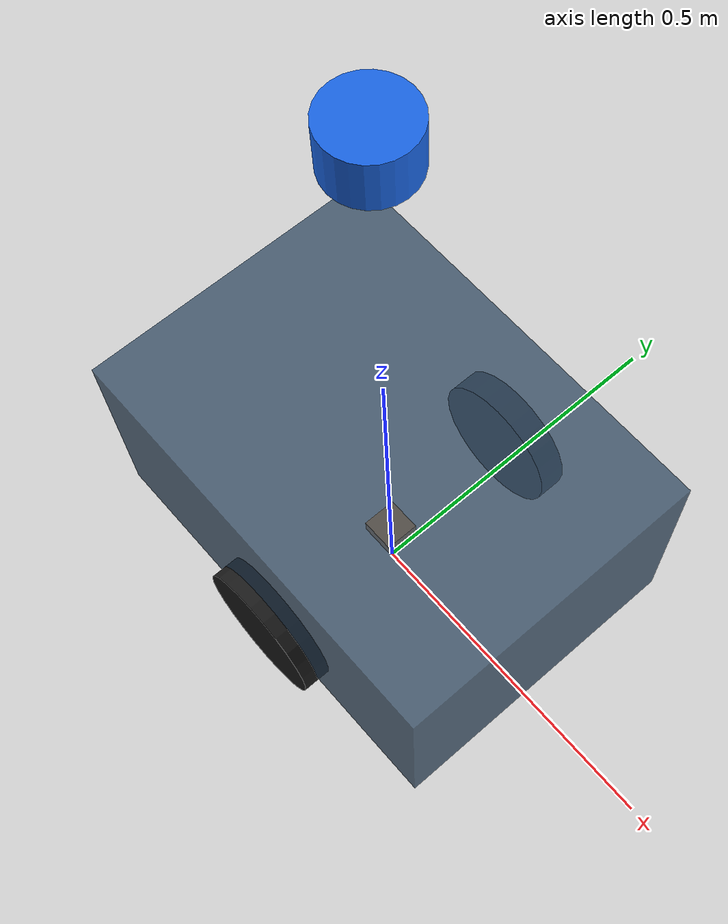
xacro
<?xml version="1.0"?>
<robot xmlns:xacro="http://www.ros.org/wiki/xacro" name="sirius3">

  <xacro:arg name="prefix" default=""/>
  <xacro:property name="prefix" value="$(arg prefix)"/>

  <!-- Base Footprint (地面位置: z=0)            -->
  <link name="${prefix}base_footprint"/>

  <!-- Base Link (車軸中心高さ: 半径100mm = 0.100m) -->
  <link name="${prefix}base_link">
    <visual>
      <origin xyz="0 0 0.15" rpy="0 0 0"/>
      <geometry>
        <box size="0.60 0.435 0.30"/>
      </geometry>
      <material name="robot_body_color">
        <color rgba="0.2 0.3 0.4 0.8"/>
      </material>
    </visual>
    <collision>
      <origin xyz="0 0 0.15" rpy="0 0 0"/>
      <geometry>
        <box size="0.60 0.435 0.30"/>
      </geometry>
    </collision>
    <inertial>
      <origin xyz="0 0 0.10" rpy="0 0 0"/>
      <mass value="20.0"/>
      <inertia ixx="1.0" ixy="0.0" ixz="0.0" iyy="1.0" iyz="0.0" izz="1.0"/>
    </inertial>
  </link>

  <joint name="${prefix}base_footprint_to_base_link" type="fixed">
    <parent link="${prefix}base_footprint"/>
    <child link="${prefix}base_link"/>
    <origin xyz="0.0 0.0 0.100" rpy="0 0 0"/>
  </joint>

  <!-- LiDAR Link (地面から930mm -> base_linkから830mm) -->
  <link name="${prefix}lidar_link">
    <visual>
      <origin xyz="0 0 0" rpy="0 0 0"/>
      <geometry>
        <cylinder radius="0.05" length="0.06"/>
      </geometry>
      <material name="lidar_color">
        <color rgba="0.1 0.4 0.9 0.9"/>
      </material>
    </visual>
  </link>

  <joint name="${prefix}base_link_to_lidar_link" type="fixed">
    <parent link="${prefix}base_link"/>
    <child link="${prefix}lidar_link"/>
    <!-- 地面から930mm = base_link(100mm) + 830mm -->
    <origin xyz="0.0 0.0 0.830" rpy="0 0 0"/>
  </joint>

  <!-- Laser alias frame (urg_node2等の互換用) -->
  <link name="${prefix}laser"/>
  <joint name="${prefix}lidar_link_to_laser" type="fixed">
    <parent link="${prefix}lidar_link"/>
    <child link="${prefix}laser"/>
    <origin xyz="0.0 0.0 0.0" rpy="0 0 0"/>
  </joint>

  <!-- Velodyne frame (Velodyne 3D LiDAR用) -->
  <link name="${prefix}velodyne"/>
  <joint name="${prefix}lidar_link_to_velodyne" type="fixed">
    <parent link="${prefix}lidar_link"/>
    <child link="${prefix}velodyne"/>
    <origin xyz="0.0 0.0 0.0" rpy="0 0 0"/>
  </joint>

  <!-- IMU Link (ロボット中心)                   -->
  <link name="${prefix}imu_link">
    <visual>
      <origin xyz="0 0 0" rpy="0 0 0"/>
      <geometry>
        <box size="0.05 0.05 0.02"/>
      </geometry>
      <material name="imu_color">
        <color rgba="1.0 0.5 0.0 0.9"/>
      </material>
    </visual>
  </link>

  <joint name="${prefix}base_link_to_imu_link" type="fixed">
    <parent link="${prefix}base_link"/>
    <child link="${prefix}imu_link"/>
    <origin xyz="0.0 0.0 0.0" rpy="0 0 0"/>
  </joint>

  <!-- 車輪 (トレッド幅 435mm / 直径 200mm)        -->
  <link name="${prefix}left_wheel">
    <visual>
      <origin xyz="0 0 0" rpy="1.5707963 0 0"/>
      <geometry>
        <cylinder radius="0.100" length="0.04"/>
      </geometry>
      <material name="wheel_color">
        <color rgba="0.1 0.1 0.1 1.0"/>
      </material>
    </visual>
  </link>

  <joint name="${prefix}base_link_to_left_wheel" type="continuous">
    <parent link="${prefix}base_link"/>
    <child link="${prefix}left_wheel"/>
    <origin xyz="0.0 0.2175 0.0" rpy="0 0 0"/>
    <axis xyz="0 1 0"/>
  </joint>

  <link name="${prefix}right_wheel">
    <visual>
      <origin xyz="0 0 0" rpy="1.5707963 0 0"/>
      <geometry>
        <cylinder radius="0.100" length="0.04"/>
      </geometry>
      <material name="wheel_color">
        <color rgba="0.1 0.1 0.1 1.0"/>
      </material>
    </visual>
  </link>

  <joint name="${prefix}base_link_to_right_wheel" type="continuous">
    <parent link="${prefix}base_link"/>
    <child link="${prefix}right_wheel"/>
    <origin xyz="0.0 -0.2175 0.0" rpy="0 0 0"/>
    <axis xyz="0 1 0"/>
  </joint>

</robot>
